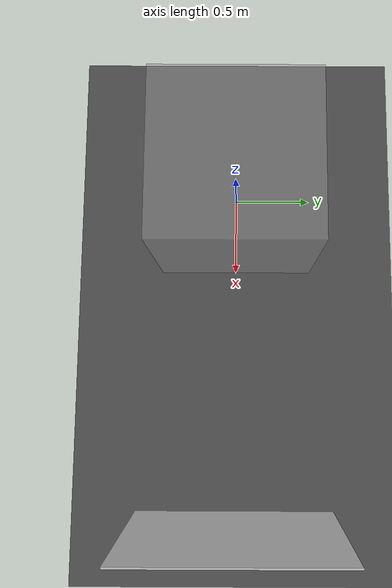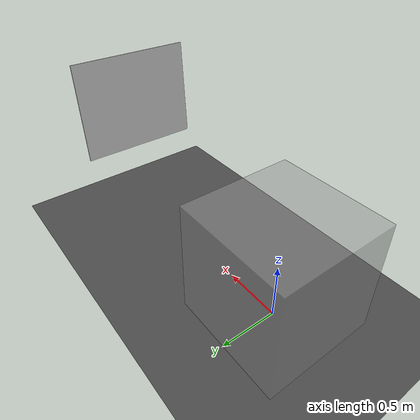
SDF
<?xml version="1.0"?>
<sdf version='1.4'>
  <world name='checkerboard_world'>
    <!-- A global light source -->
    <include>
      <uri>model://sun</uri>
    </include>

    <model name='ground_plane'>
      <static>1</static>
      <link name='link'>
        <collision name='collision'>
          <geometry>
            <plane>
              <normal>0 0 1</normal>
              <size>100 100</size>
            </plane>
          </geometry>
          <surface>
            <friction>
              <ode>
                <mu>100</mu>
                <mu2>50</mu2>
              </ode>
              <torsional>
                <ode/>
              </torsional>
            </friction>
            <contact>
              <ode/>
            </contact>
            <bounce/>
          </surface>
          <max_contacts>10</max_contacts>
        </collision>
        <visual name='visual'>
          <cast_shadows>0</cast_shadows>
          <geometry>
            <plane>
              <normal>0 0 1</normal>
              <size>100 100</size>
            </plane>
          </geometry>
          <material>
            <script>
              <uri>file://media/materials/scripts/gazebo.material</uri>
              <name>Gazebo/DarkGrey</name>
            </script>
          </material>
        </visual>
        <self_collide>0</self_collide>
        <enable_wind>0</enable_wind>
        <kinematic>0</kinematic>
      </link>
    </model>

    <physics type="ode">
      <real_time_update_rate>1000.0</real_time_update_rate>
      <max_step_size>0.00125</max_step_size>
      <real_time_factor>1</real_time_factor>
      <ode>
        <solver>
          <type>quick</type>
          <iters>150</iters>
          <precon_iters>0</precon_iters>
          <sor>1.400000</sor>
          <use_dynamic_moi_rescaling>1</use_dynamic_moi_rescaling>
        </solver>
        <constraints>
          <cfm>0.00001</cfm>
          <erp>0.2</erp>
          <contact_max_correcting_vel>2000.000000</contact_max_correcting_vel>
          <contact_surface_layer>0.01000</contact_surface_layer>
        </constraints>
      </ode>
    </physics>

   <model name="checkerboard">
      <static>true</static>
      <pose frame="">2 0 1.1 0 -1.5 0</pose>
      <link name="checkerboard_link">
        <visual name="checkerboard_visual">
          <geometry>
            <mesh>
              <uri>file://models/checkerboard/checkerboard.dae</uri>
              <scale>1 1 1</scale>
            </mesh>
          </geometry>
        </visual>
      </link>
    </model>

    <model name='unit_box'>
      <pose frame=''>0 0 0.5 0 0 0</pose>
      <link name='link'>
        <inertial>
          <mass>1</mass>
          <inertia>
            <ixx>0.166667</ixx>
            <ixy>0</ixy>
            <ixz>0</ixz>
            <iyy>0.166667</iyy>
            <iyz>0</iyz>
            <izz>0.166667</izz>
          </inertia>
        </inertial>
        <collision name='collision'>
          <geometry>
            <box>
              <size>1 1 1</size>
            </box>
          </geometry>
          <max_contacts>10</max_contacts>
          <surface>
            <contact>
              <ode/>
            </contact>
            <bounce/>
            <friction>
              <torsional>
                <ode/>
              </torsional>
              <ode/>
            </friction>
          </surface>
        </collision>
        <visual name='visual'>
          <geometry>
            <box>
              <size>1 1 1</size>
            </box>
          </geometry>
          <material>
            <script>
              <name>Gazebo/GreyTransparent</name>
              <uri>file://media/materials/scripts/gazebo.material</uri>
            </script>
          </material>
        </visual>
        <self_collide>0</self_collide>
        <enable_wind>0</enable_wind>
        <kinematic>0</kinematic>
      </link>
    </model>

    <scene>
      <ambient>1 1 1 1</ambient>
      <background>0.7 0.7 0.7 1</background>
      <shadows>true</shadows>
    </scene>

  </world>

</sdf>
